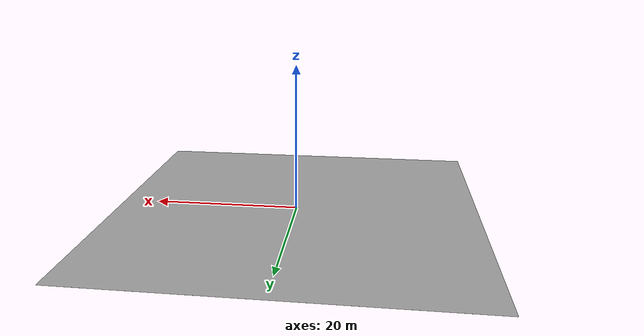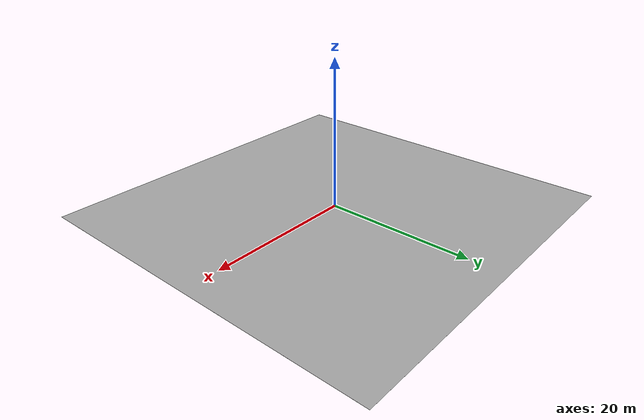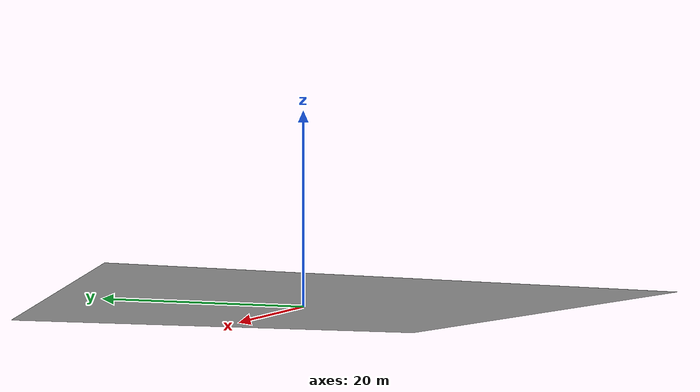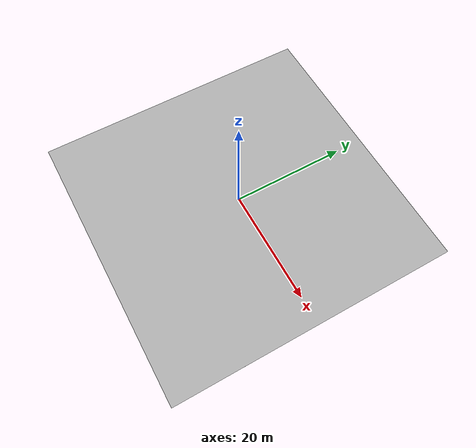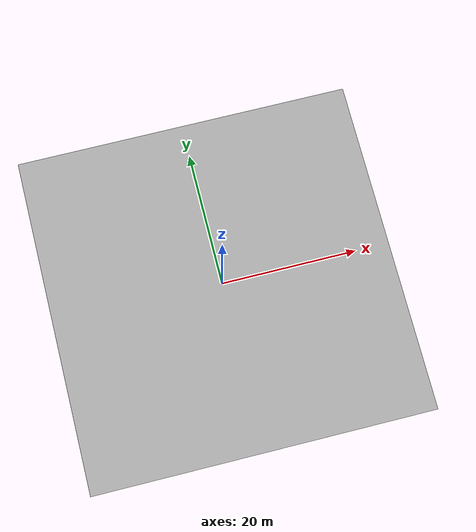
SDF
<?xml version='1.0'?>
<sdf version='1.6'>
  <model name='grass_floor'>
    <link name='link_grass'>
      <pose frame=''>0 0 -0.05 0 -0 0</pose>
      <inertial>
        <pose frame=''>0 0 -0.05 0 -0 -1.57079633</pose>
        <mass>0.2</mass>
        <inertia>
          <ixx>0.0411</ixx>
          <ixy>0</ixy>
          <ixz>0</ixz>
          <iyy>0.0478</iyy>
          <iyz>0</iyz>
          <izz>0.0599</izz>
        </inertia>
      </inertial>
      <self_collide>0</self_collide>
      <kinematic>0</kinematic>
      <collision name='Collision'>
      	<pose frame=''>0 0 -0.05 0 -0 -1.57079633 </pose>
      	<geometry>
      		<box>
      			<size>15 15 0.005</size>
      		</box>
      	</geometry>
      </collision>
      <visual name='visual'>
        <pose frame=''>0 0 -0.05 0 -0 -1.57079633</pose>
        <geometry>
          <mesh>
            <uri>/home/armando/Documents/visual_servoing_ws/src/test_gazebo/meshes/grass50.dae</uri>
            <scale>1 1 1</scale>
          </mesh>
        </geometry>
        <cast_shadows>1</cast_shadows>
        <transparency>0</transparency>
      </visual>
     </link>
    <static>0</static>
    <allow_auto_disable>0</allow_auto_disable>
  </model>
</sdf>
